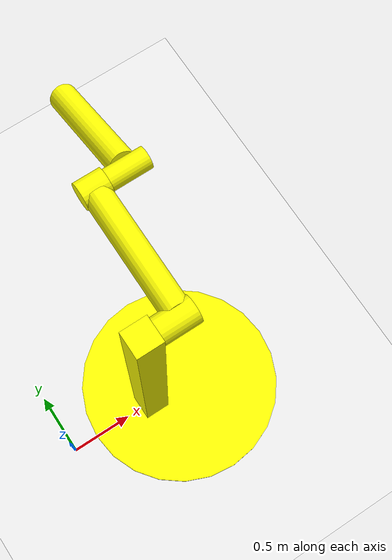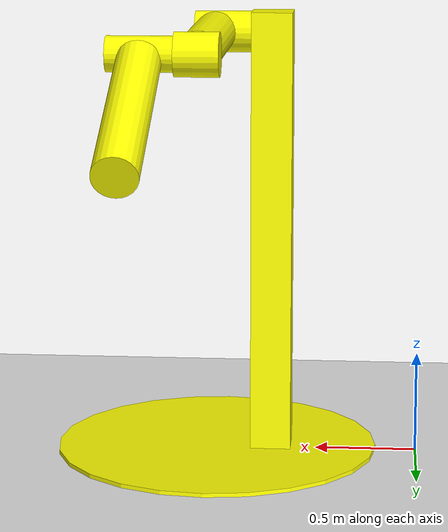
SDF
<?xml version="1.0" ?>
<sdf version="1.6">
  <world name="test_world">
    <model name="ground_plane">
      <static>true</static>
      <link name="link">
        <collision name="collision">
          <geometry>
            <plane>
              <normal>0 0 1</normal>
              <size>100 100</size>
            </plane>
          </geometry>
          <surface>
            <friction>
              <ode>
                <mu>100</mu>
                <mu2>50</mu2>
              </ode>
            </friction>
          </surface>
        </collision>
        <visual name="visual">
          <cast_shadows>false</cast_shadows>
          <geometry>
            <plane>
              <normal>0 0 1</normal>
              <size>100 100</size>
            </plane>
          </geometry>
          <material>
            <ambient>0.9 0.9 0.9 1</ambient>
          </material>
        </visual>
      </link>
    </model>
    <model name="double_pendulum_with_base">
      <pose>1 0 0 0 0 0</pose>
      <link name="base">
        <inertial>
          <mass>100</mass>
        </inertial>
        <visual name="vis_plate_on_ground">
          <pose>0 0 0.01 0 0 0</pose>
          <geometry>
            <cylinder>
              <radius>0.8</radius>
              <length>0.02</length>
            </cylinder>
          </geometry>
          <material>
            <ambient>1 1 0 1</ambient>
          </material>
        </visual>
        <visual name="vis_pole">
          <pose>-0.275 0 1.1 0 0 0</pose>
          <geometry>
            <box>
              <size>0.2 0.2 2.2</size>
            </box>
          </geometry>
          <material>
            <ambient>1 1 0 1</ambient>
          </material>
        </visual>
        <collision name="col_plate_on_ground">
          <pose>0 0 0.01 0 0 0</pose>
          <geometry>
            <cylinder>
              <radius>0.8</radius>
              <length>0.02</length>
            </cylinder>
          </geometry>
        </collision>
        <collision name="col_pole">
          <pose>-0.275 0 1.1 0 0 0</pose>
          <geometry>
            <box>
              <size>0.2 0.2 2.2</size>
            </box>
          </geometry>
          <surface>
            <friction>
              <ode>
                <mu>1.1</mu>
              </ode>
            </friction>
          </surface>
        </collision>
      </link>
      <!-- upper link, length 1, IC -90 degrees -->
      <link name="upper_link">
        <pose>0 0 2.1 -1.5708 0 0</pose>
        <self_collide>0</self_collide>
        <inertial>
          <pose>0 0 0.5 0 0 0</pose>
        </inertial>
        <visual name="vis_upper_joint">
          <pose>-0.05 0 0 0 1.5708 0</pose>
          <geometry>
            <cylinder>
              <radius>0.1</radius>
              <length>0.3</length>
            </cylinder>
          </geometry>
          <material>
            <ambient>1 1 0 1</ambient>
          </material>
        </visual>
        <visual name="vis_lower_joint">
          <pose>0 0 1.0 0 1.5708 0</pose>
          <geometry>
            <cylinder>
              <radius>0.1</radius>
              <length>0.2</length>
            </cylinder>
          </geometry>
          <material>
            <ambient>1 1 0 1</ambient>
          </material>
        </visual>
        <visual name="vis_cylinder">
          <pose>0 0 0.5 0 0 0</pose>
          <geometry>
            <cylinder>
              <radius>0.1</radius>
              <length>0.9</length>
            </cylinder>
          </geometry>
          <material>
            <ambient>1 1 0 1</ambient>
          </material>
        </visual>
        <collision name="col_upper_joint">
          <pose>-0.05 0 0 0 1.5708 0</pose>
          <geometry>
            <cylinder>
              <radius>0.1</radius>
              <length>0.3</length>
            </cylinder>
          </geometry>
          <surface>
            <friction>
              <ode>
                <mu>0.1</mu>
              </ode>
            </friction>
          </surface>
        </collision>
        <collision name="col_lower_joint">
          <pose>0 0 1.0 0 1.5708 0</pose>
          <geometry>
            <cylinder>
              <radius>0.1</radius>
              <length>0.2</length>
            </cylinder>
          </geometry>
        </collision>
        <collision name="col_cylinder">
          <pose>0 0 0.5 0 0 0</pose>
          <geometry>
            <cylinder>
              <radius>0.1</radius>
              <length>0.9</length>
            </cylinder>
          </geometry>
        </collision>
      </link>
      <!-- lower link, length 1, IC ~-120 degrees more -->
      <link name="lower_link">
        <pose>0.25 1.0 2.1 -2 0 0</pose>
        <self_collide>0</self_collide>
        <inertial>
          <pose>0 0 0.5 0 0 0</pose>
        </inertial>
        <visual name="vis_lower_joint">
          <pose>0 0 0 0 1.5708 0</pose>
          <geometry>
            <cylinder>
              <radius>0.08</radius>
              <length>0.3</length>
            </cylinder>
          </geometry>
          <material>
            <ambient>1 1 0 1</ambient>
          </material>
        </visual>
        <visual name="vis_cylinder">
          <pose>0 0 0.5 0 0 0</pose>
          <geometry>
            <cylinder>
              <radius>0.1</radius>
              <length>0.9</length>
            </cylinder>
          </geometry>
          <material>
            <ambient>1 1 0 1</ambient>
          </material>
        </visual>
        <collision name="col_lower_joint">
          <pose>0 0 0 0 1.5708 0</pose>
          <geometry>
            <cylinder>
              <radius>0.08</radius>
              <length>0.3</length>
            </cylinder>
          </geometry>
        </collision>
        <collision name="col_cylinder">
          <pose>0 0 0.5 0 0 0</pose>
          <geometry>
            <cylinder>
              <radius>0.1</radius>
              <length>0.9</length>
            </cylinder>
          </geometry>
        </collision>
      </link>
      <!-- pin joint for upper link, at origin of upper link -->
      <joint name="upper_joint" type="revolute">
        <parent>base</parent>
        <child>upper_link</child>
        <axis>
          <xyz>1.0 0 0</xyz>
          <dynamics>
            <damping>3.0</damping>
          </dynamics>
        </axis>
      </joint>
      <!-- pin joint for lower link, at origin of child link -->
      <joint name="lower_joint" type="revolute">
        <parent>upper_link</parent>
        <child>lower_link</child>
        <axis>
          <xyz>1.0 0 0</xyz>
          <mimic joint="upper_joint" axis="1">
            <multiplier>1.0</multiplier>
            <offset>0</offset>
        </mimic>
        </axis>
      </joint>
    </model>

  </world>
</sdf>
